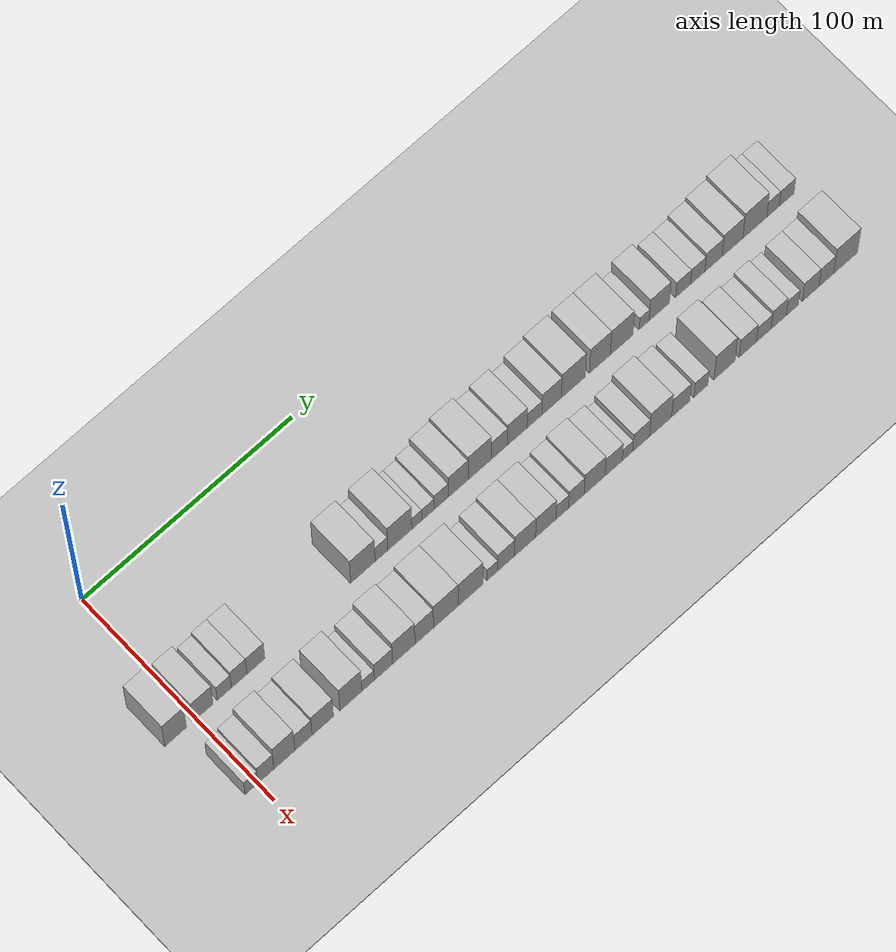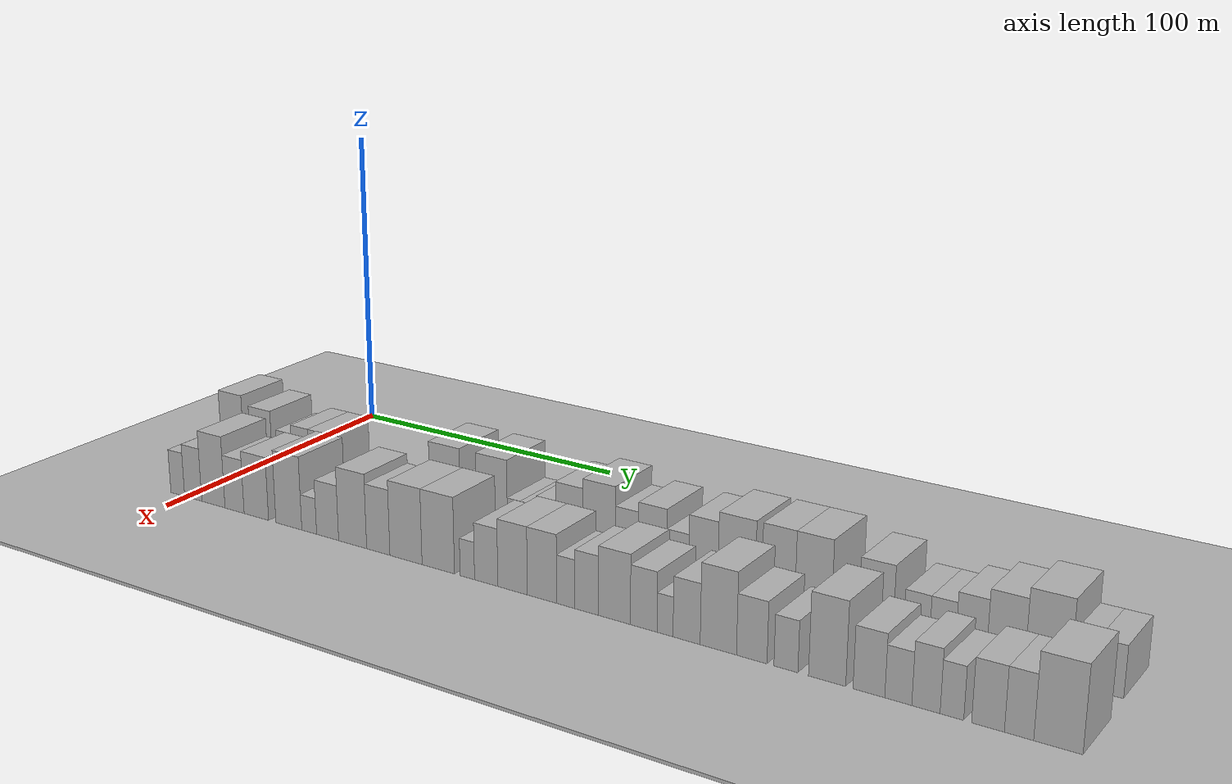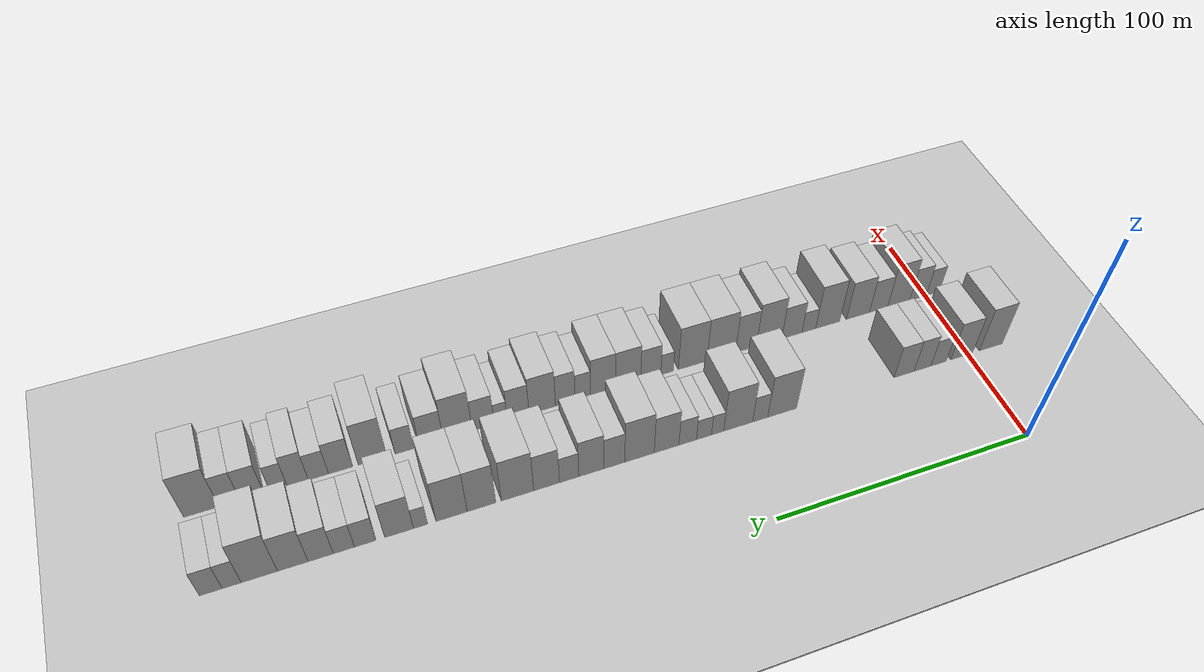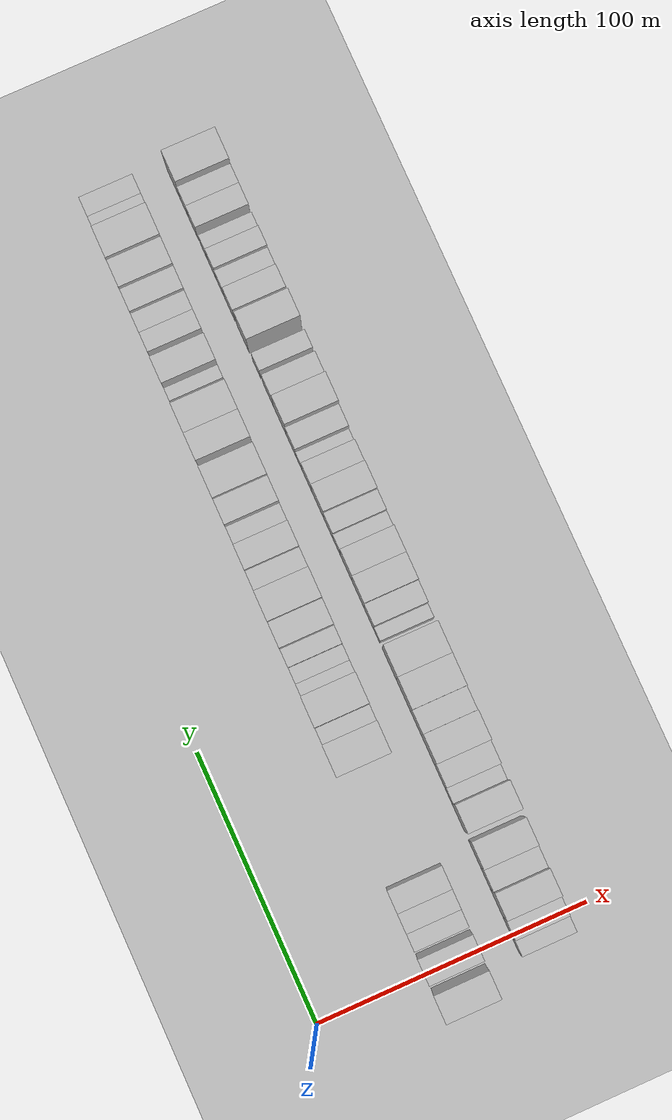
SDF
<sdf version="1.6">
 <world name="default">
  <include><name>ground_plane_1</name><uri>model://HANNAS_ground_plane</uri></include>
  <include>
   <name>ground_plane_2</name>
   <uri>model://HANNAS_ground_plane</uri>
   <pose>100 0 0  0 0 0</pose>
  </include>
  <model name="building_32">
   <static>1</static>
   <pose>50.0000 -9.8697 0 0.000000 0.000000 0.000000</pose>
   <link name="link">
    <pose>0 0 12.00 0 0 0</pose>
    <collision name="collision"><geometry><box><size>20.0000 10.1728 24.0000</size></box></geometry></collision>
    <visual name="visual">
     <cast_shadows>0</cast_shadows>
     <geometry><box><size>20.0000 10.1728 24.0000</size></box></geometry>
     <material>
      <script>
       <uri>model://HANNAS_wall/materials/scripts</uri>
       <uri>model://HANNAS_wall/materials/textures</uri>
       <name>vrc/HANNAS_wall</name>
      </script>
     </material>
    </visual>
   </link>
  </model>
  <model name="building_33">
   <static>1</static>
   <pose>50.0000 2.9684 0 0.000000 0.000000 0.000000</pose>
   <link name="link">
    <pose>0 0 10.50 0 0 0</pose>
    <collision name="collision"><geometry><box><size>20.0000 9.5035 21.0000</size></box></geometry></collision>
    <visual name="visual">
     <cast_shadows>0</cast_shadows>
     <geometry><box><size>20.0000 9.5035 21.0000</size></box></geometry>
     <material>
      <script>
       <uri>model://HANNAS_wall/materials/scripts</uri>
       <uri>model://HANNAS_wall/materials/textures</uri>
       <name>vrc/HANNAS_wall</name>
      </script>
     </material>
    </visual>
   </link>
  </model>
  <model name="building_34">
   <static>1</static>
   <pose>50.0000 13.0650 0 0.000000 0.000000 0.000000</pose>
   <link name="link">
    <pose>0 0 7.50 0 0 0</pose>
    <collision name="collision"><geometry><box><size>20.0000 6.6897 15.0000</size></box></geometry></collision>
    <visual name="visual">
     <cast_shadows>0</cast_shadows>
     <geometry><box><size>20.0000 6.6897 15.0000</size></box></geometry>
     <material>
      <script>
       <uri>model://HANNAS_wall/materials/scripts</uri>
       <uri>model://HANNAS_wall/materials/textures</uri>
       <name>vrc/HANNAS_wall</name>
      </script>
     </material>
    </visual>
   </link>
  </model>
  <model name="building_35">
   <static>1</static>
   <pose>50.0000 20.0244 0 0.000000 0.000000 0.000000</pose>
   <link name="link">
    <pose>0 0 9.00 0 0 0</pose>
    <collision name="collision"><geometry><box><size>20.0000 7.2292 18.0000</size></box></geometry></collision>
    <visual name="visual">
     <cast_shadows>0</cast_shadows>
     <geometry><box><size>20.0000 7.2292 18.0000</size></box></geometry>
     <material>
      <script>
       <uri>model://HANNAS_wall/materials/scripts</uri>
       <uri>model://HANNAS_wall/materials/textures</uri>
       <name>vrc/HANNAS_wall</name>
      </script>
     </material>
    </visual>
   </link>
  </model>
  <model name="building_36">
   <static>1</static>
   <pose>50.0000 27.8837 0 0.000000 0.000000 0.000000</pose>
   <link name="link">
    <pose>0 0 9.00 0 0 0</pose>
    <collision name="collision"><geometry><box><size>20.0000 8.4892 18.0000</size></box></geometry></collision>
    <visual name="visual">
     <cast_shadows>0</cast_shadows>
     <geometry><box><size>20.0000 8.4892 18.0000</size></box></geometry>
     <material>
      <script>
       <uri>model://HANNAS_wall/materials/scripts</uri>
       <uri>model://HANNAS_wall/materials/textures</uri>
       <name>vrc/HANNAS_wall</name>
      </script>
     </material>
    </visual>
   </link>
  </model>
  <model name="building_37">
   <static>1</static>
   <pose>50.0000 78.7567 0 0.000000 0.000000 0.000000</pose>
   <link name="link">
    <pose>0 0 12.00 0 0 0</pose>
    <collision name="collision"><geometry><box><size>20.0000 11.7523 24.0000</size></box></geometry></collision>
    <visual name="visual">
     <cast_shadows>0</cast_shadows>
     <geometry><box><size>20.0000 11.7523 24.0000</size></box></geometry>
     <material>
      <script>
       <uri>model://HANNAS_wall/materials/scripts</uri>
       <uri>model://HANNAS_wall/materials/textures</uri>
       <name>vrc/HANNAS_wall</name>
      </script>
     </material>
    </visual>
   </link>
  </model>
  <model name="building_38">
   <static>1</static>
   <pose>50.0000 87.6733 0 0.000000 0.000000 0.000000</pose>
   <link name="link">
    <pose>0 0 7.50 0 0 0</pose>
    <collision name="collision"><geometry><box><size>20.0000 6.0810 15.0000</size></box></geometry></collision>
    <visual name="visual">
     <cast_shadows>0</cast_shadows>
     <geometry><box><size>20.0000 6.0810 15.0000</size></box></geometry>
     <material>
      <script>
       <uri>model://HANNAS_wall/materials/scripts</uri>
       <uri>model://HANNAS_wall/materials/textures</uri>
       <name>vrc/HANNAS_wall</name>
      </script>
     </material>
    </visual>
   </link>
  </model>
  <model name="building_39">
   <static>1</static>
   <pose>50.0000 96.4820 0 0.000000 0.000000 0.000000</pose>
   <link name="link">
    <pose>0 0 12.00 0 0 0</pose>
    <collision name="collision"><geometry><box><size>20.0000 11.5364 24.0000</size></box></geometry></collision>
    <visual name="visual">
     <cast_shadows>0</cast_shadows>
     <geometry><box><size>20.0000 11.5364 24.0000</size></box></geometry>
     <material>
      <script>
       <uri>model://HANNAS_wall/materials/scripts</uri>
       <uri>model://HANNAS_wall/materials/textures</uri>
       <name>vrc/HANNAS_wall</name>
      </script>
     </material>
    </visual>
   </link>
  </model>
  <model name="building_40">
   <static>1</static>
   <pose>50.0000 104.6592 0 0.000000 0.000000 0.000000</pose>
   <link name="link">
    <pose>0 0 6.00 0 0 0</pose>
    <collision name="collision"><geometry><box><size>20.0000 4.8180 12.0000</size></box></geometry></collision>
    <visual name="visual">
     <cast_shadows>0</cast_shadows>
     <geometry><box><size>20.0000 4.8180 12.0000</size></box></geometry>
     <material>
      <script>
       <uri>model://HANNAS_wall/materials/scripts</uri>
       <uri>model://HANNAS_wall/materials/textures</uri>
       <name>vrc/HANNAS_wall</name>
      </script>
     </material>
    </visual>
   </link>
  </model>
  <model name="building_41">
   <static>1</static>
   <pose>50.0000 110.0333 0 0.000000 0.000000 0.000000</pose>
   <link name="link">
    <pose>0 0 6.00 0 0 0</pose>
    <collision name="collision"><geometry><box><size>20.0000 5.9301 12.0000</size></box></geometry></collision>
    <visual name="visual">
     <cast_shadows>0</cast_shadows>
     <geometry><box><size>20.0000 5.9301 12.0000</size></box></geometry>
     <material>
      <script>
       <uri>model://HANNAS_wall/materials/scripts</uri>
       <uri>model://HANNAS_wall/materials/textures</uri>
       <name>vrc/HANNAS_wall</name>
      </script>
     </material>
    </visual>
   </link>
  </model>
  <model name="building_42">
   <static>1</static>
   <pose>50.0000 116.3993 0 0.000000 0.000000 0.000000</pose>
   <link name="link">
    <pose>0 0 7.50 0 0 0</pose>
    <collision name="collision"><geometry><box><size>20.0000 6.8020 15.0000</size></box></geometry></collision>
    <visual name="visual">
     <cast_shadows>0</cast_shadows>
     <geometry><box><size>20.0000 6.8020 15.0000</size></box></geometry>
     <material>
      <script>
       <uri>model://HANNAS_wall/materials/scripts</uri>
       <uri>model://HANNAS_wall/materials/textures</uri>
       <name>vrc/HANNAS_wall</name>
      </script>
     </material>
    </visual>
   </link>
  </model>
  <model name="building_43">
   <static>1</static>
   <pose>50.0000 124.5717 0 0.000000 0.000000 0.000000</pose>
   <link name="link">
    <pose>0 0 10.50 0 0 0</pose>
    <collision name="collision"><geometry><box><size>20.0000 9.5428 21.0000</size></box></geometry></collision>
    <visual name="visual">
     <cast_shadows>0</cast_shadows>
     <geometry><box><size>20.0000 9.5428 21.0000</size></box></geometry>
     <material>
      <script>
       <uri>model://HANNAS_wall/materials/scripts</uri>
       <uri>model://HANNAS_wall/materials/textures</uri>
       <name>vrc/HANNAS_wall</name>
      </script>
     </material>
    </visual>
   </link>
  </model>
  <model name="building_44">
   <static>1</static>
   <pose>50.0000 134.9854 0 0.000000 0.000000 0.000000</pose>
   <link name="link">
    <pose>0 0 12.00 0 0 0</pose>
    <collision name="collision"><geometry><box><size>20.0000 11.2845 24.0000</size></box></geometry></collision>
    <visual name="visual">
     <cast_shadows>0</cast_shadows>
     <geometry><box><size>20.0000 11.2845 24.0000</size></box></geometry>
     <material>
      <script>
       <uri>model://HANNAS_wall/materials/scripts</uri>
       <uri>model://HANNAS_wall/materials/textures</uri>
       <name>vrc/HANNAS_wall</name>
      </script>
     </material>
    </visual>
   </link>
  </model>
  <model name="building_45">
   <static>1</static>
   <pose>50.0000 144.5385 0 0.000000 0.000000 0.000000</pose>
   <link name="link">
    <pose>0 0 9.00 0 0 0</pose>
    <collision name="collision"><geometry><box><size>20.0000 7.8218 18.0000</size></box></geometry></collision>
    <visual name="visual">
     <cast_shadows>0</cast_shadows>
     <geometry><box><size>20.0000 7.8218 18.0000</size></box></geometry>
     <material>
      <script>
       <uri>model://HANNAS_wall/materials/scripts</uri>
       <uri>model://HANNAS_wall/materials/textures</uri>
       <name>vrc/HANNAS_wall</name>
      </script>
     </material>
    </visual>
   </link>
  </model>
  <model name="building_46">
   <static>1</static>
   <pose>50.0000 153.2001 0 0.000000 0.000000 0.000000</pose>
   <link name="link">
    <pose>0 0 10.50 0 0 0</pose>
    <collision name="collision"><geometry><box><size>20.0000 9.5014 21.0000</size></box></geometry></collision>
    <visual name="visual">
     <cast_shadows>0</cast_shadows>
     <geometry><box><size>20.0000 9.5014 21.0000</size></box></geometry>
     <material>
      <script>
       <uri>model://HANNAS_wall/materials/scripts</uri>
       <uri>model://HANNAS_wall/materials/textures</uri>
       <name>vrc/HANNAS_wall</name>
      </script>
     </material>
    </visual>
   </link>
  </model>
  <model name="building_47">
   <static>1</static>
   <pose>50.0000 161.5398 0 0.000000 0.000000 0.000000</pose>
   <link name="link">
    <pose>0 0 7.50 0 0 0</pose>
    <collision name="collision"><geometry><box><size>20.0000 7.1778 15.0000</size></box></geometry></collision>
    <visual name="visual">
     <cast_shadows>0</cast_shadows>
     <geometry><box><size>20.0000 7.1778 15.0000</size></box></geometry>
     <material>
      <script>
       <uri>model://HANNAS_wall/materials/scripts</uri>
       <uri>model://HANNAS_wall/materials/textures</uri>
       <name>vrc/HANNAS_wall</name>
      </script>
     </material>
    </visual>
   </link>
  </model>
  <model name="building_48">
   <static>1</static>
   <pose>50.0000 169.8752 0 0.000000 0.000000 0.000000</pose>
   <link name="link">
    <pose>0 0 10.50 0 0 0</pose>
    <collision name="collision"><geometry><box><size>20.0000 9.4931 21.0000</size></box></geometry></collision>
    <visual name="visual">
     <cast_shadows>0</cast_shadows>
     <geometry><box><size>20.0000 9.4931 21.0000</size></box></geometry>
     <material>
      <script>
       <uri>model://HANNAS_wall/materials/scripts</uri>
       <uri>model://HANNAS_wall/materials/textures</uri>
       <name>vrc/HANNAS_wall</name>
      </script>
     </material>
    </visual>
   </link>
  </model>
  <model name="building_49">
   <static>1</static>
   <pose>50.0000 180.5172 0 0.000000 0.000000 0.000000</pose>
   <link name="link">
    <pose>0 0 12.00 0 0 0</pose>
    <collision name="collision"><geometry><box><size>20.0000 11.7908 24.0000</size></box></geometry></collision>
    <visual name="visual">
     <cast_shadows>0</cast_shadows>
     <geometry><box><size>20.0000 11.7908 24.0000</size></box></geometry>
     <material>
      <script>
       <uri>model://HANNAS_wall/materials/scripts</uri>
       <uri>model://HANNAS_wall/materials/textures</uri>
       <name>vrc/HANNAS_wall</name>
      </script>
     </material>
    </visual>
   </link>
  </model>
  <model name="building_50">
   <static>1</static>
   <pose>50.0000 193.5483 0 0.000000 0.000000 0.000000</pose>
   <link name="link">
    <pose>0 0 12.00 0 0 0</pose>
    <collision name="collision"><geometry><box><size>20.0000 10.2715 24.0000</size></box></geometry></collision>
    <visual name="visual">
     <cast_shadows>0</cast_shadows>
     <geometry><box><size>20.0000 10.2715 24.0000</size></box></geometry>
     <material>
      <script>
       <uri>model://HANNAS_wall/materials/scripts</uri>
       <uri>model://HANNAS_wall/materials/textures</uri>
       <name>vrc/HANNAS_wall</name>
      </script>
     </material>
    </visual>
   </link>
  </model>
  <model name="building_51">
   <static>1</static>
   <pose>50.0000 204.2314 0 0.000000 0.000000 0.000000</pose>
   <link name="link">
    <pose>0 0 12.00 0 0 0</pose>
    <collision name="collision"><geometry><box><size>20.0000 11.0947 24.0000</size></box></geometry></collision>
    <visual name="visual">
     <cast_shadows>0</cast_shadows>
     <geometry><box><size>20.0000 11.0947 24.0000</size></box></geometry>
     <material>
      <script>
       <uri>model://HANNAS_wall/materials/scripts</uri>
       <uri>model://HANNAS_wall/materials/textures</uri>
       <name>vrc/HANNAS_wall</name>
      </script>
     </material>
    </visual>
   </link>
  </model>
  <model name="building_52">
   <static>1</static>
   <pose>50.0000 215.2408 0 0.000000 0.000000 0.000000</pose>
   <link name="link">
    <pose>0 0 6.00 0 0 0</pose>
    <collision name="collision"><geometry><box><size>20.0000 4.9242 12.0000</size></box></geometry></collision>
    <visual name="visual">
     <cast_shadows>0</cast_shadows>
     <geometry><box><size>20.0000 4.9242 12.0000</size></box></geometry>
     <material>
      <script>
       <uri>model://HANNAS_wall/materials/scripts</uri>
       <uri>model://HANNAS_wall/materials/textures</uri>
       <name>vrc/HANNAS_wall</name>
      </script>
     </material>
    </visual>
   </link>
  </model>
  <model name="building_53">
   <static>1</static>
   <pose>50.0000 222.7247 0 0.000000 0.000000 0.000000</pose>
   <link name="link">
    <pose>0 0 10.50 0 0 0</pose>
    <collision name="collision"><geometry><box><size>20.0000 10.0436 21.0000</size></box></geometry></collision>
    <visual name="visual">
     <cast_shadows>0</cast_shadows>
     <geometry><box><size>20.0000 10.0436 21.0000</size></box></geometry>
     <material>
      <script>
       <uri>model://HANNAS_wall/materials/scripts</uri>
       <uri>model://HANNAS_wall/materials/textures</uri>
       <name>vrc/HANNAS_wall</name>
      </script>
     </material>
    </visual>
   </link>
  </model>
  <model name="building_54">
   <static>1</static>
   <pose>50.0000 234.4221 0 0.000000 0.000000 0.000000</pose>
   <link name="link">
    <pose>0 0 7.50 0 0 0</pose>
    <collision name="collision"><geometry><box><size>20.0000 7.3512 15.0000</size></box></geometry></collision>
    <visual name="visual">
     <cast_shadows>0</cast_shadows>
     <geometry><box><size>20.0000 7.3512 15.0000</size></box></geometry>
     <material>
      <script>
       <uri>model://HANNAS_wall/materials/scripts</uri>
       <uri>model://HANNAS_wall/materials/textures</uri>
       <name>vrc/HANNAS_wall</name>
      </script>
     </material>
    </visual>
   </link>
  </model>
  <model name="building_55">
   <static>1</static>
   <pose>50.0000 241.7030 0 0.000000 0.000000 0.000000</pose>
   <link name="link">
    <pose>0 0 7.50 0 0 0</pose>
    <collision name="collision"><geometry><box><size>20.0000 7.2104 15.0000</size></box></geometry></collision>
    <visual name="visual">
     <cast_shadows>0</cast_shadows>
     <geometry><box><size>20.0000 7.2104 15.0000</size></box></geometry>
     <material>
      <script>
       <uri>model://HANNAS_wall/materials/scripts</uri>
       <uri>model://HANNAS_wall/materials/textures</uri>
       <name>vrc/HANNAS_wall</name>
      </script>
     </material>
    </visual>
   </link>
  </model>
  <model name="building_56">
   <static>1</static>
   <pose>50.0000 249.5671 0 0.000000 0.000000 0.000000</pose>
   <link name="link">
    <pose>0 0 9.00 0 0 0</pose>
    <collision name="collision"><geometry><box><size>20.0000 8.5178 18.0000</size></box></geometry></collision>
    <visual name="visual">
     <cast_shadows>0</cast_shadows>
     <geometry><box><size>20.0000 8.5178 18.0000</size></box></geometry>
     <material>
      <script>
       <uri>model://HANNAS_wall/materials/scripts</uri>
       <uri>model://HANNAS_wall/materials/textures</uri>
       <name>vrc/HANNAS_wall</name>
      </script>
     </material>
    </visual>
   </link>
  </model>
  <model name="building_57">
   <static>1</static>
   <pose>50.0000 258.9550 0 0.000000 0.000000 0.000000</pose>
   <link name="link">
    <pose>0 0 10.50 0 0 0</pose>
    <collision name="collision"><geometry><box><size>20.0000 10.2580 21.0000</size></box></geometry></collision>
    <visual name="visual">
     <cast_shadows>0</cast_shadows>
     <geometry><box><size>20.0000 10.2580 21.0000</size></box></geometry>
     <material>
      <script>
       <uri>model://HANNAS_wall/materials/scripts</uri>
       <uri>model://HANNAS_wall/materials/textures</uri>
       <name>vrc/HANNAS_wall</name>
      </script>
     </material>
    </visual>
   </link>
  </model>
  <model name="building_58">
   <static>1</static>
   <pose>50.0000 270.0629 0 0.000000 0.000000 0.000000</pose>
   <link name="link">
    <pose>0 0 12.00 0 0 0</pose>
    <collision name="collision"><geometry><box><size>20.0000 11.9577 24.0000</size></box></geometry></collision>
    <visual name="visual">
     <cast_shadows>0</cast_shadows>
     <geometry><box><size>20.0000 11.9577 24.0000</size></box></geometry>
     <material>
      <script>
       <uri>model://HANNAS_wall/materials/scripts</uri>
       <uri>model://HANNAS_wall/materials/textures</uri>
       <name>vrc/HANNAS_wall</name>
      </script>
     </material>
    </visual>
   </link>
  </model>
  <model name="building_59">
   <static>1</static>
   <pose>50.0000 279.1584 0 0.000000 0.000000 0.000000</pose>
   <link name="link">
    <pose>0 0 7.50 0 0 0</pose>
    <collision name="collision"><geometry><box><size>20.0000 6.2331 15.0000</size></box></geometry></collision>
    <visual name="visual">
     <cast_shadows>0</cast_shadows>
     <geometry><box><size>20.0000 6.2331 15.0000</size></box></geometry>
     <material>
      <script>
       <uri>model://HANNAS_wall/materials/scripts</uri>
       <uri>model://HANNAS_wall/materials/textures</uri>
       <name>vrc/HANNAS_wall</name>
      </script>
     </material>
    </visual>
   </link>
  </model>
  <model name="building_60">
   <static>1</static>
   <pose>50.0000 285.9794 0 0.000000 0.000000 0.000000</pose>
   <link name="link">
    <pose>0 0 7.50 0 0 0</pose>
    <collision name="collision"><geometry><box><size>20.0000 7.4090 15.0000</size></box></geometry></collision>
    <visual name="visual">
     <cast_shadows>0</cast_shadows>
     <geometry><box><size>20.0000 7.4090 15.0000</size></box></geometry>
     <material>
      <script>
       <uri>model://HANNAS_wall/materials/scripts</uri>
       <uri>model://HANNAS_wall/materials/textures</uri>
       <name>vrc/HANNAS_wall</name>
      </script>
     </material>
    </visual>
   </link>
  </model>
  <model name="building_92">
   <static>1</static>
   <pose>82.0000 -3.2545 0 0.000000 0.000000 0.000000</pose>
   <link name="link">
    <pose>0 0 7.50 0 0 0</pose>
    <collision name="collision"><geometry><box><size>20.0000 6.0596 15.0000</size></box></geometry></collision>
    <visual name="visual">
     <cast_shadows>0</cast_shadows>
     <geometry><box><size>20.0000 6.0596 15.0000</size></box></geometry>
     <material>
      <script>
       <uri>model://HANNAS_wall/materials/scripts</uri>
       <uri>model://HANNAS_wall/materials/textures</uri>
       <name>vrc/HANNAS_wall</name>
      </script>
     </material>
    </visual>
   </link>
  </model>
  <model name="building_93">
   <static>1</static>
   <pose>82.0000 3.5081 0 0.000000 0.000000 0.000000</pose>
   <link name="link">
    <pose>0 0 9.00 0 0 0</pose>
    <collision name="collision"><geometry><box><size>20.0000 7.4657 18.0000</size></box></geometry></collision>
    <visual name="visual">
     <cast_shadows>0</cast_shadows>
     <geometry><box><size>20.0000 7.4657 18.0000</size></box></geometry>
     <material>
      <script>
       <uri>model://HANNAS_wall/materials/scripts</uri>
       <uri>model://HANNAS_wall/materials/textures</uri>
       <name>vrc/HANNAS_wall</name>
      </script>
     </material>
    </visual>
   </link>
  </model>
  <model name="building_94">
   <static>1</static>
   <pose>82.0000 12.2098 0 0.000000 0.000000 0.000000</pose>
   <link name="link">
    <pose>0 0 12.00 0 0 0</pose>
    <collision name="collision"><geometry><box><size>20.0000 9.9377 24.0000</size></box></geometry></collision>
    <visual name="visual">
     <cast_shadows>0</cast_shadows>
     <geometry><box><size>20.0000 9.9377 24.0000</size></box></geometry>
     <material>
      <script>
       <uri>model://HANNAS_wall/materials/scripts</uri>
       <uri>model://HANNAS_wall/materials/textures</uri>
       <name>vrc/HANNAS_wall</name>
      </script>
     </material>
    </visual>
   </link>
  </model>
  <model name="building_95">
   <static>1</static>
   <pose>82.0000 21.2089 0 0.000000 0.000000 0.000000</pose>
   <link name="link">
    <pose>0 0 9.00 0 0 0</pose>
    <collision name="collision"><geometry><box><size>20.0000 8.0606 18.0000</size></box></geometry></collision>
    <visual name="visual">
     <cast_shadows>0</cast_shadows>
     <geometry><box><size>20.0000 8.0606 18.0000</size></box></geometry>
     <material>
      <script>
       <uri>model://HANNAS_wall/materials/scripts</uri>
       <uri>model://HANNAS_wall/materials/textures</uri>
       <name>vrc/HANNAS_wall</name>
      </script>
     </material>
    </visual>
   </link>
  </model>
  <model name="building_96">
   <static>1</static>
   <pose>82.0000 30.3054 0 0.000000 0.000000 0.000000</pose>
   <link name="link">
    <pose>0 0 10.50 0 0 0</pose>
    <collision name="collision"><geometry><box><size>20.0000 10.1323 21.0000</size></box></geometry></collision>
    <visual name="visual">
     <cast_shadows>0</cast_shadows>
     <geometry><box><size>20.0000 10.1323 21.0000</size></box></geometry>
     <material>
      <script>
       <uri>model://HANNAS_wall/materials/scripts</uri>
       <uri>model://HANNAS_wall/materials/textures</uri>
       <name>vrc/HANNAS_wall</name>
      </script>
     </material>
    </visual>
   </link>
  </model>
  <model name="building_97">
   <static>1</static>
   <pose>82.0000 43.6037 0 0.000000 0.000000 0.000000</pose>
   <link name="link">
    <pose>0 0 12.00 0 0 0</pose>
    <collision name="collision"><geometry><box><size>20.0000 10.4644 24.0000</size></box></geometry></collision>
    <visual name="visual">
     <cast_shadows>0</cast_shadows>
     <geometry><box><size>20.0000 10.4644 24.0000</size></box></geometry>
     <material>
      <script>
       <uri>model://HANNAS_wall/materials/scripts</uri>
       <uri>model://HANNAS_wall/materials/textures</uri>
       <name>vrc/HANNAS_wall</name>
      </script>
     </material>
    </visual>
   </link>
  </model>
  <model name="building_98">
   <static>1</static>
   <pose>82.0000 51.7775 0 0.000000 0.000000 0.000000</pose>
   <link name="link">
    <pose>0 0 6.00 0 0 0</pose>
    <collision name="collision"><geometry><box><size>20.0000 5.8832 12.0000</size></box></geometry></collision>
    <visual name="visual">
     <cast_shadows>0</cast_shadows>
     <geometry><box><size>20.0000 5.8832 12.0000</size></box></geometry>
     <material>
      <script>
       <uri>model://HANNAS_wall/materials/scripts</uri>
       <uri>model://HANNAS_wall/materials/textures</uri>
       <name>vrc/HANNAS_wall</name>
      </script>
     </material>
    </visual>
   </link>
  </model>
  <model name="building_99">
   <static>1</static>
   <pose>82.0000 59.0478 0 0.000000 0.000000 0.000000</pose>
   <link name="link">
    <pose>0 0 9.00 0 0 0</pose>
    <collision name="collision"><geometry><box><size>20.0000 8.6574 18.0000</size></box></geometry></collision>
    <visual name="visual">
     <cast_shadows>0</cast_shadows>
     <geometry><box><size>20.0000 8.6574 18.0000</size></box></geometry>
     <material>
      <script>
       <uri>model://HANNAS_wall/materials/scripts</uri>
       <uri>model://HANNAS_wall/materials/textures</uri>
       <name>vrc/HANNAS_wall</name>
      </script>
     </material>
    </visual>
   </link>
  </model>
  <model name="building_100">
   <static>1</static>
   <pose>82.0000 68.7750 0 0.000000 0.000000 0.000000</pose>
   <link name="link">
    <pose>0 0 12.00 0 0 0</pose>
    <collision name="collision"><geometry><box><size>20.0000 10.7970 24.0000</size></box></geometry></collision>
    <visual name="visual">
     <cast_shadows>0</cast_shadows>
     <geometry><box><size>20.0000 10.7970 24.0000</size></box></geometry>
     <material>
      <script>
       <uri>model://HANNAS_wall/materials/scripts</uri>
       <uri>model://HANNAS_wall/materials/textures</uri>
       <name>vrc/HANNAS_wall</name>
      </script>
     </material>
    </visual>
   </link>
  </model>
  <model name="building_101">
   <static>1</static>
   <pose>82.0000 78.5691 0 0.000000 0.000000 0.000000</pose>
   <link name="link">
    <pose>0 0 10.50 0 0 0</pose>
    <collision name="collision"><geometry><box><size>20.0000 8.7911 21.0000</size></box></geometry></collision>
    <visual name="visual">
     <cast_shadows>0</cast_shadows>
     <geometry><box><size>20.0000 8.7911 21.0000</size></box></geometry>
     <material>
      <script>
       <uri>model://HANNAS_wall/materials/scripts</uri>
       <uri>model://HANNAS_wall/materials/textures</uri>
       <name>vrc/HANNAS_wall</name>
      </script>
     </material>
    </visual>
   </link>
  </model>
  <model name="building_102">
   <static>1</static>
   <pose>82.0000 88.9251 0 0.000000 0.000000 0.000000</pose>
   <link name="link">
    <pose>0 0 12.00 0 0 0</pose>
    <collision name="collision"><geometry><box><size>20.0000 11.9211 24.0000</size></box></geometry></collision>
    <visual name="visual">
     <cast_shadows>0</cast_shadows>
     <geometry><box><size>20.0000 11.9211 24.0000</size></box></geometry>
     <material>
      <script>
       <uri>model://HANNAS_wall/materials/scripts</uri>
       <uri>model://HANNAS_wall/materials/textures</uri>
       <name>vrc/HANNAS_wall</name>
      </script>
     </material>
    </visual>
   </link>
  </model>
  <model name="building_103">
   <static>1</static>
   <pose>82.0000 100.7588 0 0.000000 0.000000 0.000000</pose>
   <link name="link">
    <pose>0 0 12.00 0 0 0</pose>
    <collision name="collision"><geometry><box><size>20.0000 11.7463 24.0000</size></box></geometry></collision>
    <visual name="visual">
     <cast_shadows>0</cast_shadows>
     <geometry><box><size>20.0000 11.7463 24.0000</size></box></geometry>
     <material>
      <script>
       <uri>model://HANNAS_wall/materials/scripts</uri>
       <uri>model://HANNAS_wall/materials/textures</uri>
       <name>vrc/HANNAS_wall</name>
      </script>
     </material>
    </visual>
   </link>
  </model>
  <model name="building_104">
   <static>1</static>
   <pose>82.0000 111.1938 0 0.000000 0.000000 0.000000</pose>
   <link name="link">
    <pose>0 0 6.00 0 0 0</pose>
    <collision name="collision"><geometry><box><size>20.0000 5.1237 12.0000</size></box></geometry></collision>
    <visual name="visual">
     <cast_shadows>0</cast_shadows>
     <geometry><box><size>20.0000 5.1237 12.0000</size></box></geometry>
     <material>
      <script>
       <uri>model://HANNAS_wall/materials/scripts</uri>
       <uri>model://HANNAS_wall/materials/textures</uri>
       <name>vrc/HANNAS_wall</name>
      </script>
     </material>
    </visual>
   </link>
  </model>
  <model name="building_105">
   <static>1</static>
   <pose>82.0000 117.8300 0 0.000000 0.000000 0.000000</pose>
   <link name="link">
    <pose>0 0 9.00 0 0 0</pose>
    <collision name="collision"><geometry><box><size>20.0000 8.1486 18.0000</size></box></geometry></collision>
    <visual name="visual">
     <cast_shadows>0</cast_shadows>
     <geometry><box><size>20.0000 8.1486 18.0000</size></box></geometry>
     <material>
      <script>
       <uri>model://HANNAS_wall/materials/scripts</uri>
       <uri>model://HANNAS_wall/materials/textures</uri>
       <name>vrc/HANNAS_wall</name>
      </script>
     </material>
    </visual>
   </link>
  </model>
  <model name="building_106">
   <static>1</static>
   <pose>82.0000 126.9650 0 0.000000 0.000000 0.000000</pose>
   <link name="link">
    <pose>0 0 10.50 0 0 0</pose>
    <collision name="collision"><geometry><box><size>20.0000 10.1215 21.0000</size></box></geometry></collision>
    <visual name="visual">
     <cast_shadows>0</cast_shadows>
     <geometry><box><size>20.0000 10.1215 21.0000</size></box></geometry>
     <material>
      <script>
       <uri>model://HANNAS_wall/materials/scripts</uri>
       <uri>model://HANNAS_wall/materials/textures</uri>
       <name>vrc/HANNAS_wall</name>
      </script>
     </material>
    </visual>
   </link>
  </model>
  <model name="building_107">
   <static>1</static>
   <pose>82.0000 136.9508 0 0.000000 0.000000 0.000000</pose>
   <link name="link">
    <pose>0 0 10.50 0 0 0</pose>
    <collision name="collision"><geometry><box><size>20.0000 9.8501 21.0000</size></box></geometry></collision>
    <visual name="visual">
     <cast_shadows>0</cast_shadows>
     <geometry><box><size>20.0000 9.8501 21.0000</size></box></geometry>
     <material>
      <script>
       <uri>model://HANNAS_wall/materials/scripts</uri>
       <uri>model://HANNAS_wall/materials/textures</uri>
       <name>vrc/HANNAS_wall</name>
      </script>
     </material>
    </visual>
   </link>
  </model>
  <model name="building_108">
   <static>1</static>
   <pose>82.0000 144.9129 0 0.000000 0.000000 0.000000</pose>
   <link name="link">
    <pose>0 0 7.50 0 0 0</pose>
    <collision name="collision"><geometry><box><size>20.0000 6.0741 15.0000</size></box></geometry></collision>
    <visual name="visual">
     <cast_shadows>0</cast_shadows>
     <geometry><box><size>20.0000 6.0741 15.0000</size></box></geometry>
     <material>
      <script>
       <uri>model://HANNAS_wall/materials/scripts</uri>
       <uri>model://HANNAS_wall/materials/textures</uri>
       <name>vrc/HANNAS_wall</name>
      </script>
     </material>
    </visual>
   </link>
  </model>
  <model name="building_109">
   <static>1</static>
   <pose>82.0000 151.7712 0 0.000000 0.000000 0.000000</pose>
   <link name="link">
    <pose>0 0 9.00 0 0 0</pose>
    <collision name="collision"><geometry><box><size>20.0000 7.6425 18.0000</size></box></geometry></collision>
    <visual name="visual">
     <cast_shadows>0</cast_shadows>
     <geometry><box><size>20.0000 7.6425 18.0000</size></box></geometry>
     <material>
      <script>
       <uri>model://HANNAS_wall/materials/scripts</uri>
       <uri>model://HANNAS_wall/materials/textures</uri>
       <name>vrc/HANNAS_wall</name>
      </script>
     </material>
    </visual>
   </link>
  </model>
  <model name="building_110">
   <static>1</static>
   <pose>82.0000 160.7220 0 0.000000 0.000000 0.000000</pose>
   <link name="link">
    <pose>0 0 10.50 0 0 0</pose>
    <collision name="collision"><geometry><box><size>20.0000 10.2591 21.0000</size></box></geometry></collision>
    <visual name="visual">
     <cast_shadows>0</cast_shadows>
     <geometry><box><size>20.0000 10.2591 21.0000</size></box></geometry>
     <material>
      <script>
       <uri>model://HANNAS_wall/materials/scripts</uri>
       <uri>model://HANNAS_wall/materials/textures</uri>
       <name>vrc/HANNAS_wall</name>
      </script>
     </material>
    </visual>
   </link>
  </model>
  <model name="building_111">
   <static>1</static>
   <pose>82.0000 170.0290 0 0.000000 0.000000 0.000000</pose>
   <link name="link">
    <pose>0 0 9.00 0 0 0</pose>
    <collision name="collision"><geometry><box><size>20.0000 8.3550 18.0000</size></box></geometry></collision>
    <visual name="visual">
     <cast_shadows>0</cast_shadows>
     <geometry><box><size>20.0000 8.3550 18.0000</size></box></geometry>
     <material>
      <script>
       <uri>model://HANNAS_wall/materials/scripts</uri>
       <uri>model://HANNAS_wall/materials/textures</uri>
       <name>vrc/HANNAS_wall</name>
      </script>
     </material>
    </visual>
   </link>
  </model>
  <model name="building_112">
   <static>1</static>
   <pose>82.0000 176.6872 0 0.000000 0.000000 0.000000</pose>
   <link name="link">
    <pose>0 0 6.00 0 0 0</pose>
    <collision name="collision"><geometry><box><size>20.0000 4.9613 12.0000</size></box></geometry></collision>
    <visual name="visual">
     <cast_shadows>0</cast_shadows>
     <geometry><box><size>20.0000 4.9613 12.0000</size></box></geometry>
     <material>
      <script>
       <uri>model://HANNAS_wall/materials/scripts</uri>
       <uri>model://HANNAS_wall/materials/textures</uri>
       <name>vrc/HANNAS_wall</name>
      </script>
     </material>
    </visual>
   </link>
  </model>
  <model name="building_113">
   <static>1</static>
   <pose>82.0000 183.3089 0 0.000000 0.000000 0.000000</pose>
   <link name="link">
    <pose>0 0 9.00 0 0 0</pose>
    <collision name="collision"><geometry><box><size>20.0000 8.2822 18.0000</size></box></geometry></collision>
    <visual name="visual">
     <cast_shadows>0</cast_shadows>
     <geometry><box><size>20.0000 8.2822 18.0000</size></box></geometry>
     <material>
      <script>
       <uri>model://HANNAS_wall/materials/scripts</uri>
       <uri>model://HANNAS_wall/materials/textures</uri>
       <name>vrc/HANNAS_wall</name>
      </script>
     </material>
    </visual>
   </link>
  </model>
  <model name="building_114">
   <static>1</static>
   <pose>82.0000 192.8771 0 0.000000 0.000000 0.000000</pose>
   <link name="link">
    <pose>0 0 12.00 0 0 0</pose>
    <collision name="collision"><geometry><box><size>20.0000 10.8542 24.0000</size></box></geometry></collision>
    <visual name="visual">
     <cast_shadows>0</cast_shadows>
     <geometry><box><size>20.0000 10.8542 24.0000</size></box></geometry>
     <material>
      <script>
       <uri>model://HANNAS_wall/materials/scripts</uri>
       <uri>model://HANNAS_wall/materials/textures</uri>
       <name>vrc/HANNAS_wall</name>
      </script>
     </material>
    </visual>
   </link>
  </model>
  <model name="building_115">
   <static>1</static>
   <pose>82.0000 202.7748 0 0.000000 0.000000 0.000000</pose>
   <link name="link">
    <pose>0 0 9.00 0 0 0</pose>
    <collision name="collision"><geometry><box><size>20.0000 8.9411 18.0000</size></box></geometry></collision>
    <visual name="visual">
     <cast_shadows>0</cast_shadows>
     <geometry><box><size>20.0000 8.9411 18.0000</size></box></geometry>
     <material>
      <script>
       <uri>model://HANNAS_wall/materials/scripts</uri>
       <uri>model://HANNAS_wall/materials/textures</uri>
       <name>vrc/HANNAS_wall</name>
      </script>
     </material>
    </visual>
   </link>
  </model>
  <model name="building_116">
   <static>1</static>
   <pose>82.0000 212.6744 0 0.000000 0.000000 0.000000</pose>
   <link name="link">
    <pose>0 0 7.50 0 0 0</pose>
    <collision name="collision"><geometry><box><size>20.0000 6.8581 15.0000</size></box></geometry></collision>
    <visual name="visual">
     <cast_shadows>0</cast_shadows>
     <geometry><box><size>20.0000 6.8581 15.0000</size></box></geometry>
     <material>
      <script>
       <uri>model://HANNAS_wall/materials/scripts</uri>
       <uri>model://HANNAS_wall/materials/textures</uri>
       <name>vrc/HANNAS_wall</name>
      </script>
     </material>
    </visual>
   </link>
  </model>
  <model name="building_117">
   <static>1</static>
   <pose>82.0000 224.2985 0 0.000000 0.000000 0.000000</pose>
   <link name="link">
    <pose>0 0 12.00 0 0 0</pose>
    <collision name="collision"><geometry><box><size>20.0000 10.3901 24.0000</size></box></geometry></collision>
    <visual name="visual">
     <cast_shadows>0</cast_shadows>
     <geometry><box><size>20.0000 10.3901 24.0000</size></box></geometry>
     <material>
      <script>
       <uri>model://HANNAS_wall/materials/scripts</uri>
       <uri>model://HANNAS_wall/materials/textures</uri>
       <name>vrc/HANNAS_wall</name>
      </script>
     </material>
    </visual>
   </link>
  </model>
  <model name="building_118">
   <static>1</static>
   <pose>82.0000 235.8104 0 0.000000 0.000000 0.000000</pose>
   <link name="link">
    <pose>0 0 9.00 0 0 0</pose>
    <collision name="collision"><geometry><box><size>20.0000 8.6337 18.0000</size></box></geometry></collision>
    <visual name="visual">
     <cast_shadows>0</cast_shadows>
     <geometry><box><size>20.0000 8.6337 18.0000</size></box></geometry>
     <material>
      <script>
       <uri>model://HANNAS_wall/materials/scripts</uri>
       <uri>model://HANNAS_wall/materials/textures</uri>
       <name>vrc/HANNAS_wall</name>
      </script>
     </material>
    </visual>
   </link>
  </model>
  <model name="building_119">
   <static>1</static>
   <pose>82.0000 243.7251 0 0.000000 0.000000 0.000000</pose>
   <link name="link">
    <pose>0 0 7.50 0 0 0</pose>
    <collision name="collision"><geometry><box><size>20.0000 7.1957 15.0000</size></box></geometry></collision>
    <visual name="visual">
     <cast_shadows>0</cast_shadows>
     <geometry><box><size>20.0000 7.1957 15.0000</size></box></geometry>
     <material>
      <script>
       <uri>model://HANNAS_wall/materials/scripts</uri>
       <uri>model://HANNAS_wall/materials/textures</uri>
       <name>vrc/HANNAS_wall</name>
      </script>
     </material>
    </visual>
   </link>
  </model>
  <model name="building_120">
   <static>1</static>
   <pose>82.0000 251.0376 0 0.000000 0.000000 0.000000</pose>
   <link name="link">
    <pose>0 0 9.00 0 0 0</pose>
    <collision name="collision"><geometry><box><size>20.0000 7.4292 18.0000</size></box></geometry></collision>
    <visual name="visual">
     <cast_shadows>0</cast_shadows>
     <geometry><box><size>20.0000 7.4292 18.0000</size></box></geometry>
     <material>
      <script>
       <uri>model://HANNAS_wall/materials/scripts</uri>
       <uri>model://HANNAS_wall/materials/textures</uri>
       <name>vrc/HANNAS_wall</name>
      </script>
     </material>
    </visual>
   </link>
  </model>
  <model name="building_121">
   <static>1</static>
   <pose>82.0000 257.8078 0 0.000000 0.000000 0.000000</pose>
   <link name="link">
    <pose>0 0 7.50 0 0 0</pose>
    <collision name="collision"><geometry><box><size>20.0000 6.1112 15.0000</size></box></geometry></collision>
    <visual name="visual">
     <cast_shadows>0</cast_shadows>
     <geometry><box><size>20.0000 6.1112 15.0000</size></box></geometry>
     <material>
      <script>
       <uri>model://HANNAS_wall/materials/scripts</uri>
       <uri>model://HANNAS_wall/materials/textures</uri>
       <name>vrc/HANNAS_wall</name>
      </script>
     </material>
    </visual>
   </link>
  </model>
  <model name="building_122">
   <static>1</static>
   <pose>82.0000 267.0037 0 0.000000 0.000000 0.000000</pose>
   <link name="link">
    <pose>0 0 9.00 0 0 0</pose>
    <collision name="collision"><geometry><box><size>20.0000 8.2806 18.0000</size></box></geometry></collision>
    <visual name="visual">
     <cast_shadows>0</cast_shadows>
     <geometry><box><size>20.0000 8.2806 18.0000</size></box></geometry>
     <material>
      <script>
       <uri>model://HANNAS_wall/materials/scripts</uri>
       <uri>model://HANNAS_wall/materials/textures</uri>
       <name>vrc/HANNAS_wall</name>
      </script>
     </material>
    </visual>
   </link>
  </model>
  <model name="building_123">
   <static>1</static>
   <pose>82.0000 274.7835 0 0.000000 0.000000 0.000000</pose>
   <link name="link">
    <pose>0 0 9.00 0 0 0</pose>
    <collision name="collision"><geometry><box><size>20.0000 7.2790 18.0000</size></box></geometry></collision>
    <visual name="visual">
     <cast_shadows>0</cast_shadows>
     <geometry><box><size>20.0000 7.2790 18.0000</size></box></geometry>
     <material>
      <script>
       <uri>model://HANNAS_wall/materials/scripts</uri>
       <uri>model://HANNAS_wall/materials/textures</uri>
       <name>vrc/HANNAS_wall</name>
      </script>
     </material>
    </visual>
   </link>
  </model>
  <model name="building_124">
   <static>1</static>
   <pose>82.0000 284.4058 0 0.000000 0.000000 0.000000</pose>
   <link name="link">
    <pose>0 0 12.00 0 0 0</pose>
    <collision name="collision"><geometry><box><size>20.0000 11.9656 24.0000</size></box></geometry></collision>
    <visual name="visual">
     <cast_shadows>0</cast_shadows>
     <geometry><box><size>20.0000 11.9656 24.0000</size></box></geometry>
     <material>
      <script>
       <uri>model://HANNAS_wall/materials/scripts</uri>
       <uri>model://HANNAS_wall/materials/textures</uri>
       <name>vrc/HANNAS_wall</name>
      </script>
     </material>
    </visual>
   </link>
  </model>
 </world>
</sdf>
